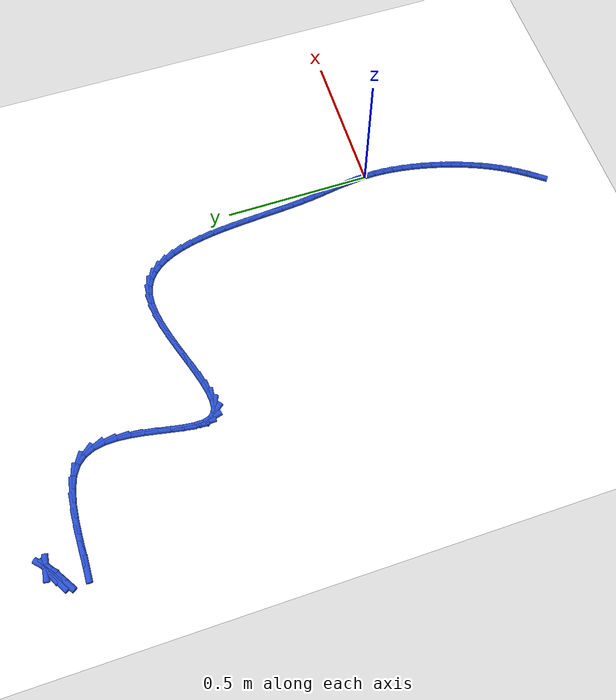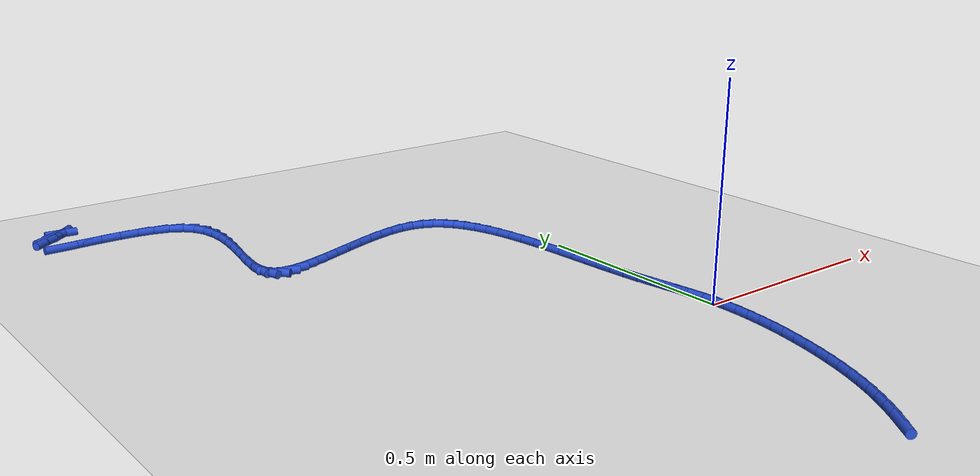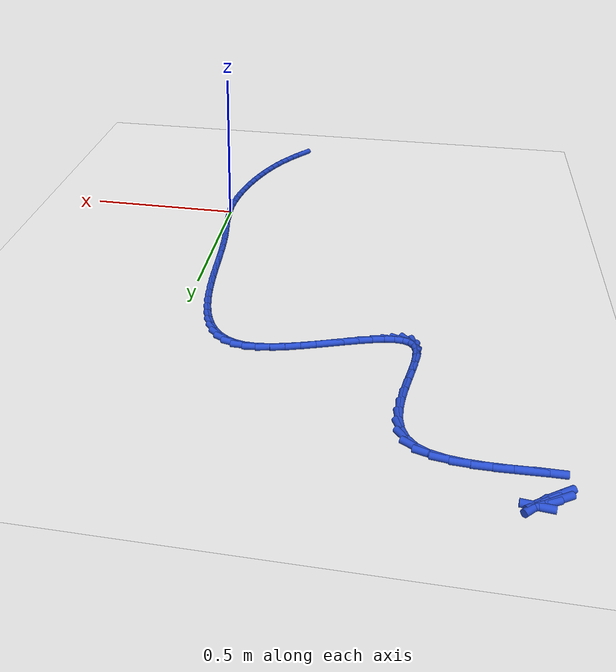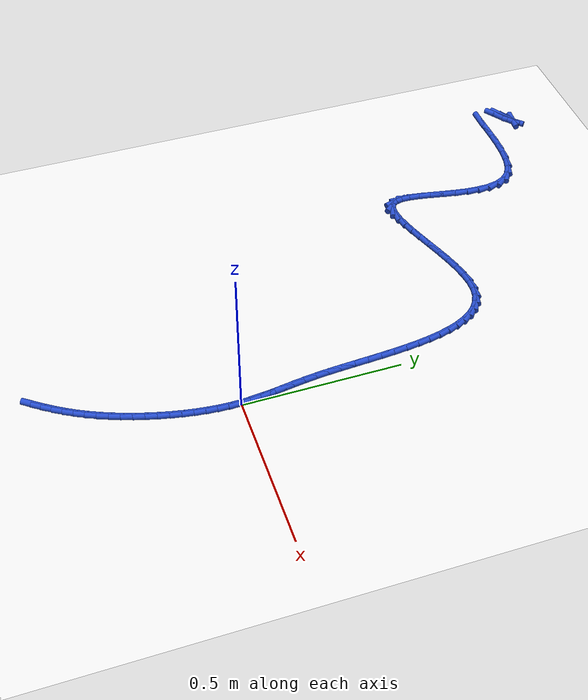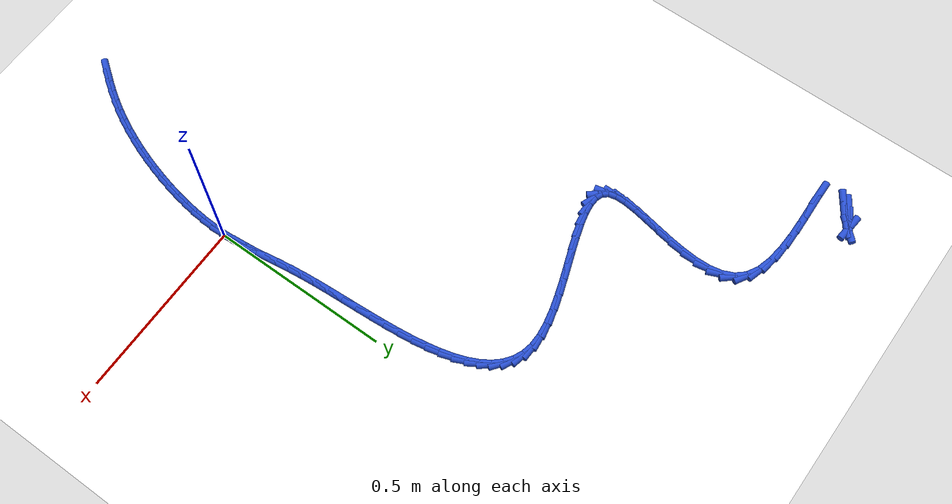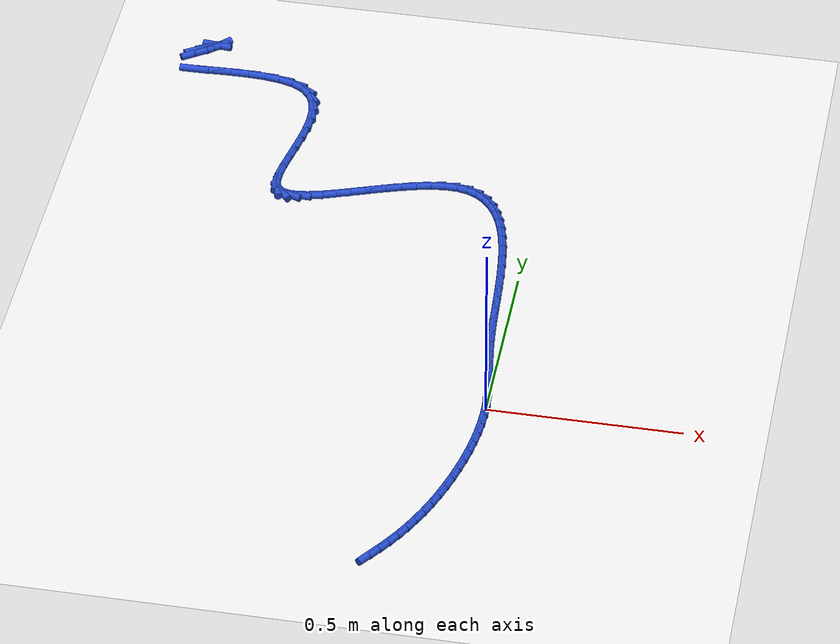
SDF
<sdf version="1.6">
 <world name="default">
  <model name="ground_plane">
   <static>1</static>
   <link name="link">
    <collision name="collision">
     <geometry><plane><normal>0 0 1</normal><size>100 100</size></plane></geometry>
     <surface><friction><ode><mu>100</mu><mu2>50</mu2></ode></friction></surface>
    </collision>
    <visual name="visual">
     <cast_shadows>0</cast_shadows>
     <geometry><plane><normal>0 0 1</normal><size>100 100</size></plane></geometry>
     <material>
      <script><uri>file://media/materials/scripts/gazebo.material</uri><name>Gazebo/WhiteGlow</name></script>
     </material>
    </visual>
   </link>
  </model>
  <model name="line">
   <link name="link_0">
    <pose>1.5612511283791264e-17 -1.3877787807814457e-17 0.01 0 1.57 -1.5118390819186485</pose>
    <collision name="collision">
     <geometry><cylinder><radius>0.01</radius><length>0.08</length></cylinder></geometry>
    </collision>
    <visual name="visual">
     <material>
      <script><name>Gazebo/Blue</name><uri>file://media/materials/scripts/gazebo.material</uri></script>
     </material>
     <geometry><cylinder><radius>0.01</radius><length>0.08</length></cylinder></geometry>
    </visual>
   </link>
   <link name="link_1">
    <pose>-0.0019415017721792643 0.032892509299139325 0.01 0 1.57 -1.4699527122502627</pose>
    <collision name="collision">
     <geometry><cylinder><radius>0.01</radius><length>0.08</length></cylinder></geometry>
    </collision>
    <visual name="visual">
     <material>
      <script><name>Gazebo/Blue</name><uri>file://media/materials/scripts/gazebo.material</uri></script>
     </material>
     <geometry><cylinder><radius>0.01</radius><length>0.08</length></cylinder></geometry>
    </visual>
   </link>
   <link name="link_2">
    <pose>-0.005248764462979722 0.06557721720528396 0.01 0 1.57 -1.4408107136291277</pose>
    <collision name="collision">
     <geometry><cylinder><radius>0.01</radius><length>0.08</length></cylinder></geometry>
    </collision>
    <visual name="visual">
     <material>
      <script><name>Gazebo/Blue</name><uri>file://media/materials/scripts/gazebo.material</uri></script>
     </material>
     <geometry><cylinder><radius>0.01</radius><length>0.08</length></cylinder></geometry>
    </visual>
   </link>
   <link name="link_3">
    <pose>-0.009543673569140288 0.09843233410015827 0.01 0 1.57 -1.425014783909602</pose>
    <collision name="collision">
     <geometry><cylinder><radius>0.01</radius><length>0.08</length></cylinder></geometry>
    </collision>
    <visual name="visual">
     <material>
      <script><name>Gazebo/Blue</name><uri>file://media/materials/scripts/gazebo.material</uri></script>
     </material>
     <geometry><cylinder><radius>0.01</radius><length>0.08</length></cylinder></geometry>
    </visual>
   </link>
   <link name="link_4">
    <pose>-0.014448114587399889 0.13183607036548653 0.01 0 1.57 -1.4222974363183094</pose>
    <collision name="collision">
     <geometry><cylinder><radius>0.01</radius><length>0.08</length></cylinder></geometry>
    </collision>
    <visual name="visual">
     <material>
      <script><name>Gazebo/Blue</name><uri>file://media/materials/scripts/gazebo.material</uri></script>
     </material>
     <geometry><cylinder><radius>0.01</radius><length>0.08</length></cylinder></geometry>
    </visual>
   </link>
   <link name="link_5">
    <pose>-0.019583973014497453 0.16616663638299312 0.01 0 1.57 -1.431695528400672</pose>
    <collision name="collision">
     <geometry><cylinder><radius>0.01</radius><length>0.08</length></cylinder></geometry>
    </collision>
    <visual name="visual">
     <material>
      <script><name>Gazebo/Blue</name><uri>file://media/materials/scripts/gazebo.material</uri></script>
     </material>
     <geometry><cylinder><radius>0.01</radius><length>0.08</length></cylinder></geometry>
    </visual>
   </link>
   <link name="link_6">
    <pose>-0.024573134347171902 0.20180224253440227 0.01 0 1.57 -1.4517349405809672</pose>
    <collision name="collision">
     <geometry><cylinder><radius>0.01</radius><length>0.08</length></cylinder></geometry>
    </collision>
    <visual name="visual">
     <material>
      <script><name>Gazebo/Blue</name><uri>file://media/materials/scripts/gazebo.material</uri></script>
     </material>
     <geometry><cylinder><radius>0.01</radius><length>0.08</length></cylinder></geometry>
    </visual>
   </link>
   <link name="link_7">
    <pose>-0.02903748408216217 0.23912109920143837 0.01 0 1.57 -1.4776081850824199</pose>
    <collision name="collision">
     <geometry><cylinder><radius>0.01</radius><length>0.08</length></cylinder></geometry>
    </collision>
    <visual name="visual">
     <material>
      <script><name>Gazebo/Blue</name><uri>file://media/materials/scripts/gazebo.material</uri></script>
     </material>
     <geometry><cylinder><radius>0.01</radius><length>0.08</length></cylinder></geometry>
    </visual>
   </link>
   <link name="link_8">
    <pose>-0.032705312508177965 0.27836649062140445 0.01 0 1.57 -1.4967464867715143</pose>
    <collision name="collision">
     <geometry><cylinder><radius>0.01</radius><length>0.08</length></cylinder></geometry>
    </collision>
    <visual name="visual">
     <material>
      <script><name>Gazebo/Blue</name><uri>file://media/materials/scripts/gazebo.material</uri></script>
     </material>
     <geometry><cylinder><radius>0.01</radius><length>0.08</length></cylinder></geometry>
    </visual>
   </link>
   <link name="link_9">
    <pose>-0.03573706674442917 0.3192337063986119 0.01 0 1.57 -1.5074773160996524</pose>
    <collision name="collision">
     <geometry><cylinder><radius>0.01</radius><length>0.08</length></cylinder></geometry>
    </collision>
    <visual name="visual">
     <material>
      <script><name>Gazebo/Blue</name><uri>file://media/materials/scripts/gazebo.material</uri></script>
     </material>
     <geometry><cylinder><radius>0.01</radius><length>0.08</length></cylinder></geometry>
    </visual>
   </link>
   <link name="link_10">
    <pose>-0.03840289256038804 0.361278933229937 0.01 0 1.57 -1.5107918281252322</pose>
    <collision name="collision">
     <geometry><cylinder><radius>0.01</radius><length>0.08</length></cylinder></geometry>
    </collision>
    <visual name="visual">
     <material>
      <script><name>Gazebo/Blue</name><uri>file://media/materials/scripts/gazebo.material</uri></script>
     </material>
     <geometry><cylinder><radius>0.01</radius><length>0.08</length></cylinder></geometry>
    </visual>
   </link>
   <link name="link_11">
    <pose>-0.04097293573970034 0.4040583577942836 0.01 0 1.57 -1.5071624007485722</pose>
    <collision name="collision">
     <geometry><cylinder><radius>0.01</radius><length>0.08</length></cylinder></geometry>
    </collision>
    <visual name="visual">
     <material>
      <script><name>Gazebo/Blue</name><uri>file://media/materials/scripts/gazebo.material</uri></script>
     </material>
     <geometry><cylinder><radius>0.01</radius><length>0.08</length></cylinder></geometry>
    </visual>
   </link>
   <link name="link_12">
    <pose>-0.04371734206601181 0.44712816677055567 0.01 0 1.57 -1.4966273112997701</pose>
    <collision name="collision">
     <geometry><cylinder><radius>0.01</radius><length>0.08</length></cylinder></geometry>
    </collision>
    <visual name="visual">
     <material>
      <script><name>Gazebo/Blue</name><uri>file://media/materials/scripts/gazebo.material</uri></script>
     </material>
     <geometry><cylinder><radius>0.01</radius><length>0.08</length></cylinder></geometry>
    </visual>
   </link>
   <link name="link_13">
    <pose>-0.046906257322968194 0.4900445468376572 0.01 0 1.57 -1.4788153640142214</pose>
    <collision name="collision">
     <geometry><cylinder><radius>0.01</radius><length>0.08</length></cylinder></geometry>
    </collision>
    <visual name="visual">
     <material>
      <script><name>Gazebo/Blue</name><uri>file://media/materials/scripts/gazebo.material</uri></script>
     </material>
     <geometry><cylinder><radius>0.01</radius><length>0.08</length></cylinder></geometry>
    </visual>
   </link>
   <link name="link_14">
    <pose>-0.050809827294215244 0.532363684674492 0.01 0 1.57 -1.4529200065143062</pose>
    <collision name="collision">
     <geometry><cylinder><radius>0.01</radius><length>0.08</length></cylinder></geometry>
    </collision>
    <visual name="visual">
     <material>
      <script><name>Gazebo/Blue</name><uri>file://media/materials/scripts/gazebo.material</uri></script>
     </material>
     <geometry><cylinder><radius>0.01</radius><length>0.08</length></cylinder></geometry>
    </visual>
   </link>
   <link name="link_15">
    <pose>-0.055698197763398696 0.5736417669599638 0.01 0 1.57 -1.4176245442067188</pose>
    <collision name="collision">
     <geometry><cylinder><radius>0.01</radius><length>0.08</length></cylinder></geometry>
    </collision>
    <visual name="visual">
     <material>
      <script><name>Gazebo/Blue</name><uri>file://media/materials/scripts/gazebo.material</uri></script>
     </material>
     <geometry><cylinder><radius>0.01</radius><length>0.08</length></cylinder></geometry>
    </visual>
   </link>
   <link name="link_16">
    <pose>-0.061841514514164295 0.6134349803729767 0.01 0 1.57 -1.3709767385991372</pose>
    <collision name="collision">
     <geometry><cylinder><radius>0.01</radius><length>0.08</length></cylinder></geometry>
    </collision>
    <visual name="visual">
     <material>
      <script><name>Gazebo/Blue</name><uri>file://media/materials/scripts/gazebo.material</uri></script>
     </material>
     <geometry><cylinder><radius>0.01</radius><length>0.08</length></cylinder></geometry>
    </visual>
   </link>
   <link name="link_17">
    <pose>-0.06950992333015779 0.6512995115924345 0.01 0 1.57 -1.310217509264038</pose>
    <collision name="collision">
     <geometry><cylinder><radius>0.01</radius><length>0.08</length></cylinder></geometry>
    </collision>
    <visual name="visual">
     <material>
      <script><name>Gazebo/Blue</name><uri>file://media/materials/scripts/gazebo.material</uri></script>
     </material>
     <geometry><cylinder><radius>0.01</radius><length>0.08</length></cylinder></geometry>
    </visual>
   </link>
   <link name="link_18">
    <pose>-0.07897356999502493 0.6867915472972412 0.01 0 1.57 -1.231601118944008</pose>
    <collision name="collision">
     <geometry><cylinder><radius>0.01</radius><length>0.08</length></cylinder></geometry>
    </collision>
    <visual name="visual">
     <material>
      <script><name>Gazebo/Blue</name><uri>file://media/materials/scripts/gazebo.material</uri></script>
     </material>
     <geometry><cylinder><radius>0.01</radius><length>0.08</length></cylinder></geometry>
    </visual>
   </link>
   <link name="link_19">
    <pose>-0.09050260029241144 0.7194672741663006 0.01 0 1.57 -1.1303437791452464</pose>
    <collision name="collision">
     <geometry><cylinder><radius>0.01</radius><length>0.08</length></cylinder></geometry>
    </collision>
    <visual name="visual">
     <material>
      <script><name>Gazebo/Blue</name><uri>file://media/materials/scripts/gazebo.material</uri></script>
     </material>
     <geometry><cylinder><radius>0.01</radius><length>0.08</length></cylinder></geometry>
    </visual>
   </link>
   <link name="link_20">
    <pose>-0.1043671600059631 0.7488828788785167 0.01 0 1.57 -1.0010758105745496</pose>
    <collision name="collision">
     <geometry><cylinder><radius>0.01</radius><length>0.08</length></cylinder></geometry>
    </collision>
    <visual name="visual">
     <material>
      <script><name>Gazebo/Blue</name><uri>file://media/materials/scripts/gazebo.material</uri></script>
     </material>
     <geometry><cylinder><radius>0.01</radius><length>0.08</length></cylinder></geometry>
    </visual>
   </link>
   <link name="link_21">
    <pose>-0.12083739491932563 0.7745945481127933 0.01 0 1.57 -0.8395584375596473</pose>
    <collision name="collision">
     <geometry><cylinder><radius>0.01</radius><length>0.08</length></cylinder></geometry>
    </collision>
    <visual name="visual">
     <material>
      <script><name>Gazebo/Blue</name><uri>file://media/materials/scripts/gazebo.material</uri></script>
     </material>
     <geometry><cylinder><radius>0.01</radius><length>0.08</length></cylinder></geometry>
    </visual>
   </link>
   <link name="link_22">
    <pose>-0.14018345081614478 0.7961584685480343 0.01 0 1.57 -0.646435158526174</pose>
    <collision name="collision">
     <geometry><cylinder><radius>0.01</radius><length>0.08</length></cylinder></geometry>
    </collision>
    <visual name="visual">
     <material>
      <script><name>Gazebo/Blue</name><uri>file://media/materials/scripts/gazebo.material</uri></script>
     </material>
     <geometry><cylinder><radius>0.01</radius><length>0.08</length></cylinder></geometry>
    </visual>
   </link>
   <link name="link_23">
    <pose>-0.16267547348006628 0.8131308268631435 0.01 0 1.57 -0.43175151763653646</pose>
    <collision name="collision">
     <geometry><cylinder><radius>0.01</radius><length>0.08</length></cylinder></geometry>
    </collision>
    <visual name="visual">
     <material>
      <script><name>Gazebo/Blue</name><uri>file://media/materials/scripts/gazebo.material</uri></script>
     </material>
     <geometry><cylinder><radius>0.01</radius><length>0.08</length></cylinder></geometry>
    </visual>
   </link>
   <link name="link_24">
    <pose>-0.18858360869473587 0.8250678097370249 0.01 0 1.57 -0.21484234970169563</pose>
    <collision name="collision">
     <geometry><cylinder><radius>0.01</radius><length>0.08</length></cylinder></geometry>
    </collision>
    <visual name="visual">
     <material>
      <script><name>Gazebo/Blue</name><uri>file://media/materials/scripts/gazebo.material</uri></script>
     </material>
     <geometry><cylinder><radius>0.01</radius><length>0.08</length></cylinder></geometry>
    </visual>
   </link>
   <link name="link_25">
    <pose>-0.2181780022437993 0.8315256038485823 0.01 0 1.57 -0.021126260409827718</pose>
    <collision name="collision">
     <geometry><cylinder><radius>0.01</radius><length>0.08</length></cylinder></geometry>
    </collision>
    <visual name="visual">
     <material>
      <script><name>Gazebo/Blue</name><uri>file://media/materials/scripts/gazebo.material</uri></script>
     </material>
     <geometry><cylinder><radius>0.01</radius><length>0.08</length></cylinder></geometry>
    </visual>
   </link>
   <link name="link_26">
    <pose>-0.25160198475441264 0.8322318326779146 0.01 0 1.57 0.11825566839608</pose>
    <collision name="collision">
     <geometry><cylinder><radius>0.01</radius><length>0.08</length></cylinder></geometry>
    </collision>
    <visual name="visual">
     <material>
      <script><name>Gazebo/Blue</name><uri>file://media/materials/scripts/gazebo.material</uri></script>
     </material>
     <geometry><cylinder><radius>0.01</radius><length>0.08</length></cylinder></geometry>
    </visual>
   </link>
   <link name="link_27">
    <pose>-0.2882896018206109 0.8278729763637357 0.01 0 1.57 0.2115178158600336</pose>
    <collision name="collision">
     <geometry><cylinder><radius>0.01</radius><length>0.08</length></cylinder></geometry>
    </collision>
    <visual name="visual">
     <material>
      <script><name>Gazebo/Blue</name><uri>file://media/materials/scripts/gazebo.material</uri></script>
     </material>
     <geometry><cylinder><radius>0.01</radius><length>0.08</length></cylinder></geometry>
    </visual>
   </link>
   <link name="link_28">
    <pose>-0.32742843103578745 0.8194687061774 0.01 0 1.57 0.27328191515543776</pose>
    <collision name="collision">
     <geometry><cylinder><radius>0.01</radius><length>0.08</length></cylinder></geometry>
    </collision>
    <visual name="visual">
     <material>
      <script><name>Gazebo/Blue</name><uri>file://media/materials/scripts/gazebo.material</uri></script>
     </material>
     <geometry><cylinder><radius>0.01</radius><length>0.08</length></cylinder></geometry>
    </visual>
   </link>
   <link name="link_29">
    <pose>-0.368205803464725 0.8080390266633322 0.01 0 1.57 0.3123617350956508</pose>
    <collision name="collision">
     <geometry><cylinder><radius>0.01</radius><length>0.08</length></cylinder></geometry>
    </collision>
    <visual name="visual">
     <material>
      <script><name>Gazebo/Blue</name><uri>file://media/materials/scripts/gazebo.material</uri></script>
     </material>
     <geometry><cylinder><radius>0.01</radius><length>0.08</length></cylinder></geometry>
    </visual>
   </link>
   <link name="link_30">
    <pose>-0.4098090501722063 0.794603942365956 0.01 0 1.57 0.3335616188444252</pose>
    <collision name="collision">
     <geometry><cylinder><radius>0.01</radius><length>0.08</length></cylinder></geometry>
    </collision>
    <visual name="visual">
     <material>
      <script><name>Gazebo/Blue</name><uri>file://media/materials/scripts/gazebo.material</uri></script>
     </material>
     <geometry><cylinder><radius>0.01</radius><length>0.08</length></cylinder></geometry>
    </visual>
   </link>
   <link name="link_31">
    <pose>-0.45142550222301414 0.780183457829696 0.01 0 1.57 0.33885431014899253</pose>
    <collision name="collision">
     <geometry><cylinder><radius>0.01</radius><length>0.08</length></cylinder></geometry>
    </collision>
    <visual name="visual">
     <material>
      <script><name>Gazebo/Blue</name><uri>file://media/materials/scripts/gazebo.material</uri></script>
     </material>
     <geometry><cylinder><radius>0.01</radius><length>0.08</length></cylinder></geometry>
    </visual>
   </link>
   <link name="link_32">
    <pose>-0.49224249068193077 0.7657975775989757 0.01 0 1.57 0.32777555426560195</pose>
    <collision name="collision">
     <geometry><cylinder><radius>0.01</radius><length>0.08</length></cylinder></geometry>
    </collision>
    <visual name="visual">
     <material>
      <script><name>Gazebo/Blue</name><uri>file://media/materials/scripts/gazebo.material</uri></script>
     </material>
     <geometry><cylinder><radius>0.01</radius><length>0.08</length></cylinder></geometry>
    </visual>
   </link>
   <link name="link_33">
    <pose>-0.5314473466137393 0.75246630621822 0.01 0 1.57 0.29700101034942195</pose>
    <collision name="collision">
     <geometry><cylinder><radius>0.01</radius><length>0.08</length></cylinder></geometry>
    </collision>
    <visual name="visual">
     <material>
      <script><name>Gazebo/Blue</name><uri>file://media/materials/scripts/gazebo.material</uri></script>
     </material>
     <geometry><cylinder><radius>0.01</radius><length>0.08</length></cylinder></geometry>
    </visual>
   </link>
   <link name="link_34">
    <pose>-0.5682274010832223 0.7412096482318526 0.01 0 1.57 0.23869469505411492</pose>
    <collision name="collision">
     <geometry><cylinder><radius>0.01</radius><length>0.08</length></cylinder></geometry>
    </collision>
    <visual name="visual">
     <material>
      <script><name>Gazebo/Blue</name><uri>file://media/materials/scripts/gazebo.material</uri></script>
     </material>
     <geometry><cylinder><radius>0.01</radius><length>0.08</length></cylinder></geometry>
    </visual>
   </link>
   <link name="link_35">
    <pose>-0.6017699851551626 0.7330476081842976 0.01 0 1.57 0.1363837995734624</pose>
    <collision name="collision">
     <geometry><cylinder><radius>0.01</radius><length>0.08</length></cylinder></geometry>
    </collision>
    <visual name="visual">
     <material>
      <script><name>Gazebo/Blue</name><uri>file://media/materials/scripts/gazebo.material</uri></script>
     </material>
     <geometry><cylinder><radius>0.01</radius><length>0.08</length></cylinder></geometry>
    </visual>
   </link>
   <link name="link_36">
    <pose>-0.6312624298943424 0.7290001906199794 0.01 0 1.57 -0.04411368922124703</pose>
    <collision name="collision">
     <geometry><cylinder><radius>0.01</radius><length>0.08</length></cylinder></geometry>
    </collision>
    <visual name="visual">
     <material>
      <script><name>Gazebo/Blue</name><uri>file://media/materials/scripts/gazebo.material</uri></script>
     </material>
     <geometry><cylinder><radius>0.01</radius><length>0.08</length></cylinder></geometry>
    </visual>
   </link>
   <link name="link_37">
    <pose>-0.6558920663655448 0.7300874000833221 0.01 0 1.57 -0.36495574321376256</pose>
    <collision name="collision">
     <geometry><cylinder><radius>0.01</radius><length>0.08</length></cylinder></geometry>
    </collision>
    <visual name="visual">
     <material>
      <script><name>Gazebo/Blue</name><uri>file://media/materials/scripts/gazebo.material</uri></script>
     </material>
     <geometry><cylinder><radius>0.01</radius><length>0.08</length></cylinder></geometry>
    </visual>
   </link>
   <link name="link_38">
    <pose>-0.6748462256335522 0.7373292411187496 0.01 0 1.57 -0.8576139744715884</pose>
    <collision name="collision">
     <geometry><cylinder><radius>0.01</radius><length>0.08</length></cylinder></geometry>
    </collision>
    <visual name="visual">
     <material>
      <script><name>Gazebo/Blue</name><uri>file://media/materials/scripts/gazebo.material</uri></script>
     </material>
     <geometry><cylinder><radius>0.01</radius><length>0.08</length></cylinder></geometry>
    </visual>
   </link>
   <link name="link_39">
    <pose>-0.6873150746168148 0.7517428073425478 0.01 0 1.57 -1.3129137072464439</pose>
    <collision name="collision">
     <geometry><cylinder><radius>0.01</radius><length>0.08</length></cylinder></geometry>
    </collision>
    <visual name="visual">
     <material>
      <script><name>Gazebo/Blue</name><uri>file://media/materials/scripts/gazebo.material</uri></script>
     </material>
     <geometry><cylinder><radius>0.01</radius><length>0.08</length></cylinder></geometry>
    </visual>
   </link>
   <link name="link_40">
    <pose>-0.6931087347726045 0.7737088255752533 0.01 0 1.57 -1.5595175447682645</pose>
    <collision name="collision">
     <geometry><cylinder><radius>0.01</radius><length>0.08</length></cylinder></geometry>
    </collision>
    <visual name="visual">
     <material>
      <script><name>Gazebo/Blue</name><uri>file://media/materials/scripts/gazebo.material</uri></script>
     </material>
     <geometry><cylinder><radius>0.01</radius><length>0.08</length></cylinder></geometry>
    </visual>
   </link>
   <link name="link_41">
    <pose>-0.6934298531334976 0.8021786322823617 0.01 0 1.57 1.4598133642609663</pose>
    <collision name="collision">
     <geometry><cylinder><radius>0.01</radius><length>0.08</length></cylinder></geometry>
    </collision>
    <visual name="visual">
     <material>
      <script><name>Gazebo/Blue</name><uri>file://media/materials/scripts/gazebo.material</uri></script>
     </material>
     <geometry><cylinder><radius>0.01</radius><length>0.08</length></cylinder></geometry>
    </visual>
   </link>
   <link name="link_42">
    <pose>-0.6896709483146134 0.8359086658150382 0.01 0 1.57 1.4016474509683845</pose>
    <collision name="collision">
     <geometry><cylinder><radius>0.01</radius><length>0.08</length></cylinder></geometry>
    </collision>
    <visual name="visual">
     <material>
      <script><name>Gazebo/Blue</name><uri>file://media/materials/scripts/gazebo.material</uri></script>
     </material>
     <geometry><cylinder><radius>0.01</radius><length>0.08</length></cylinder></geometry>
    </visual>
   </link>
   <link name="link_43">
    <pose>-0.6832245389310723 0.8736553645244467 0.01 0 1.57 1.382019085787752</pose>
    <collision name="collision">
     <geometry><cylinder><radius>0.01</radius><length>0.08</length></cylinder></geometry>
    </collision>
    <visual name="visual">
     <material>
      <script><name>Gazebo/Blue</name><uri>file://media/materials/scripts/gazebo.material</uri></script>
     </material>
     <geometry><cylinder><radius>0.01</radius><length>0.08</length></cylinder></geometry>
    </visual>
   </link>
   <link name="link_44">
    <pose>-0.6754831435979937 0.914175166761752 0.01 0 1.57 1.3909767279148109</pose>
    <collision name="collision">
     <geometry><cylinder><radius>0.01</radius><length>0.08</length></cylinder></geometry>
    </collision>
    <visual name="visual">
     <material>
      <script><name>Gazebo/Blue</name><uri>file://media/materials/scripts/gazebo.material</uri></script>
     </material>
     <geometry><cylinder><radius>0.01</radius><length>0.08</length></cylinder></geometry>
    </visual>
   </link>
   <link name="link_45">
    <pose>-0.6678392809304983 0.9562245108781192 0.01 0 1.57 1.4264485243379388</pose>
    <collision name="collision">
     <geometry><cylinder><radius>0.01</radius><length>0.08</length></cylinder></geometry>
    </collision>
    <visual name="visual">
     <material>
      <script><name>Gazebo/Blue</name><uri>file://media/materials/scripts/gazebo.material</uri></script>
     </material>
     <geometry><cylinder><radius>0.01</radius><length>0.08</length></cylinder></geometry>
    </visual>
   </link>
   <link name="link_46">
    <pose>-0.6616854695437054 0.9985598352247133 0.01 0 1.57 1.4919024230707973</pose>
    <collision name="collision">
     <geometry><cylinder><radius>0.01</radius><length>0.08</length></cylinder></geometry>
    </collision>
    <visual name="visual">
     <material>
      <script><name>Gazebo/Blue</name><uri>file://media/materials/scripts/gazebo.material</uri></script>
     </material>
     <geometry><cylinder><radius>0.01</radius><length>0.08</length></cylinder></geometry>
    </visual>
   </link>
   <link name="link_47">
    <pose>-0.6584142280527352 1.0399375781526985 0.01 0 1.57 -1.545178294317305</pose>
    <collision name="collision">
     <geometry><cylinder><radius>0.01</radius><length>0.08</length></cylinder></geometry>
    </collision>
    <visual name="visual">
     <material>
      <script><name>Gazebo/Blue</name><uri>file://media/materials/scripts/gazebo.material</uri></script>
     </material>
     <geometry><cylinder><radius>0.01</radius><length>0.08</length></cylinder></geometry>
    </visual>
   </link>
   <link name="link_48">
    <pose>-0.6594180750727076 1.0791141780132392 0.01 0 1.57 -1.386212953670389</pose>
    <collision name="collision">
     <geometry><cylinder><radius>0.01</radius><length>0.08</length></cylinder></geometry>
    </collision>
    <visual name="visual">
     <material>
      <script><name>Gazebo/Blue</name><uri>file://media/materials/scripts/gazebo.material</uri></script>
     </material>
     <geometry><cylinder><radius>0.01</radius><length>0.08</length></cylinder></geometry>
    </visual>
   </link>
   <link name="link_49">
    <pose>-0.6660895292187425 1.114846073157501 0.01 0 1.57 -1.1543376628106674</pose>
    <collision name="collision">
     <geometry><cylinder><radius>0.01</radius><length>0.08</length></cylinder></geometry>
    </collision>
    <visual name="visual">
     <material>
      <script><name>Gazebo/Blue</name><uri>file://media/materials/scripts/gazebo.material</uri></script>
     </material>
     <geometry><cylinder><radius>0.01</radius><length>0.08</length></cylinder></geometry>
    </visual>
   </link>
   <link name="link_50">
    <pose>-0.6798211091059598 1.1458897019366479 0.01 0 1.57 -0.8472182868405171</pose>
    <collision name="collision">
     <geometry><cylinder><radius>0.01</radius><length>0.08</length></cylinder></geometry>
    </collision>
    <visual name="visual">
     <material>
      <script><name>Gazebo/Blue</name><uri>file://media/materials/scripts/gazebo.material</uri></script>
     </material>
     <geometry><cylinder><radius>0.01</radius><length>0.08</length></cylinder></geometry>
    </visual>
   </link>
   <link name="link_51">
    <pose>-0.7020053333494796 1.171001502701845 0.01 0 1.57 -0.5179572351718453</pose>
    <collision name="collision">
     <geometry><cylinder><radius>0.01</radius><length>0.08</length></cylinder></geometry>
    </collision>
    <visual name="visual">
     <material>
      <script><name>Gazebo/Blue</name><uri>file://media/materials/scripts/gazebo.material</uri></script>
     </material>
     <geometry><cylinder><radius>0.01</radius><length>0.08</length></cylinder></geometry>
    </visual>
   </link>
   <link name="link_52">
    <pose>-0.7337765556577021 1.1891064149693769 0.01 0 1.57 -0.2807587287827074</pose>
    <collision name="collision">
     <geometry><cylinder><radius>0.01</radius><length>0.08</length></cylinder></geometry>
    </collision>
    <visual name="visual">
     <material>
      <script><name>Gazebo/Blue</name><uri>file://media/materials/scripts/gazebo.material</uri></script>
     </material>
     <geometry><cylinder><radius>0.01</radius><length>0.08</length></cylinder></geometry>
    </visual>
   </link>
   <link name="link_53">
    <pose>-0.7738985429935397 1.2006766320388107 0.01 0 1.57 -0.13707496246987613</pose>
    <collision name="collision">
     <geometry><cylinder><radius>0.01</radius><length>0.08</length></cylinder></geometry>
    </collision>
    <visual name="visual">
     <material>
      <script><name>Gazebo/Blue</name><uri>file://media/materials/scripts/gazebo.material</uri></script>
     </material>
     <geometry><cylinder><radius>0.01</radius><length>0.08</length></cylinder></geometry>
    </visual>
   </link>
   <link name="link_54">
    <pose>-0.8198600129949541 1.2070165567441948 0.01 0 1.57 -0.04911176284785143</pose>
    <collision name="collision">
     <geometry><cylinder><radius>0.01</radius><length>0.08</length></cylinder></geometry>
    </collision>
    <visual name="visual">
     <material>
      <script><name>Gazebo/Blue</name><uri>file://media/materials/scripts/gazebo.material</uri></script>
     </material>
     <geometry><cylinder><radius>0.01</radius><length>0.08</length></cylinder></geometry>
    </visual>
   </link>
   <link name="link_55">
    <pose>-0.8691374076711852 1.2094386040764866 0.01 0 1.57 0.0036631736291556022</pose>
    <collision name="collision">
     <geometry><cylinder><radius>0.01</radius><length>0.08</length></cylinder></geometry>
    </collision>
    <visual name="visual">
     <material>
      <script><name>Gazebo/Blue</name><uri>file://media/materials/scripts/gazebo.material</uri></script>
     </material>
     <geometry><cylinder><radius>0.01</radius><length>0.08</length></cylinder></geometry>
    </visual>
   </link>
   <link name="link_56">
    <pose>-0.9192071690314727 1.209255189026647 0.01 0 1.57 0.030534696045813107</pose>
    <collision name="collision">
     <geometry><cylinder><radius>0.01</radius><length>0.08</length></cylinder></geometry>
    </collision>
    <visual name="visual">
     <material>
      <script><name>Gazebo/Blue</name><uri>file://media/materials/scripts/gazebo.material</uri></script>
     </material>
     <geometry><cylinder><radius>0.01</radius><length>0.08</length></cylinder></geometry>
    </visual>
   </link>
   <link name="link_57">
    <pose>-0.9675457390850576 1.207778726585635 0.01 0 1.57 0.0330407969096871</pose>
    <collision name="collision">
     <geometry><cylinder><radius>0.01</radius><length>0.08</length></cylinder></geometry>
    </collision>
    <visual name="visual">
     <material>
      <script><name>Gazebo/Blue</name><uri>file://media/materials/scripts/gazebo.material</uri></script>
     </material>
     <geometry><cylinder><radius>0.01</radius><length>0.08</length></cylinder></geometry>
    </visual>
   </link>
   <link name="link_58">
    <pose>-1.0116295598411802 1.2063216317444097 0.01 0 1.57 0.0033590686071673743</pose>
    <collision name="collision">
     <geometry><cylinder><radius>0.01</radius><length>0.08</length></cylinder></geometry>
    </collision>
    <visual name="visual">
     <material>
      <script><name>Gazebo/Blue</name><uri>file://media/materials/scripts/gazebo.material</uri></script>
     </material>
     <geometry><cylinder><radius>0.01</radius><length>0.08</length></cylinder></geometry>
    </visual>
   </link>
   <link name="link_65">
    <pose>-1.0192308254464173 1.2907039595234253 0.01 0 1.57 0.5566867503905906</pose>
    <collision name="collision">
     <geometry><cylinder><radius>0.01</radius><length>0.08</length></cylinder></geometry>
    </collision>
    <visual name="visual">
     <material>
      <script><name>Gazebo/Blue</name><uri>file://media/materials/scripts/gazebo.material</uri></script>
     </material>
     <geometry><cylinder><radius>0.01</radius><length>0.08</length></cylinder></geometry>
    </visual>
   </link>
   <link name="link_66">
    <pose>-0.9898106259172549 1.3090134298093439 0.01 0 1.57 0.486553388710373</pose>
    <collision name="collision">
     <geometry><cylinder><radius>0.01</radius><length>0.08</length></cylinder></geometry>
    </collision>
    <visual name="visual">
     <material>
      <script><name>Gazebo/Blue</name><uri>file://media/materials/scripts/gazebo.material</uri></script>
     </material>
     <geometry><cylinder><radius>0.01</radius><length>0.08</length></cylinder></geometry>
    </visual>
   </link>
   <link name="link_67">
    <pose>-0.9719863083919206 1.3184419424890468 0.01 0 1.57 -0.10547685825392154</pose>
    <collision name="collision">
     <geometry><cylinder><radius>0.01</radius><length>0.08</length></cylinder></geometry>
    </collision>
    <visual name="visual">
     <material>
      <script><name>Gazebo/Blue</name><uri>file://media/materials/scripts/gazebo.material</uri></script>
     </material>
     <geometry><cylinder><radius>0.01</radius><length>0.08</length></cylinder></geometry>
    </visual>
   </link>
   <link name="link_68">
    <pose>-0.9681936813811505 1.3180404179658682 0.01 0 1.57 0.790025412645668</pose>
    <collision name="collision">
     <geometry><cylinder><radius>0.01</radius><length>0.08</length></cylinder></geometry>
    </collision>
    <visual name="visual">
     <material>
      <script><name>Gazebo/Blue</name><uri>file://media/materials/scripts/gazebo.material</uri></script>
     </material>
     <geometry><cylinder><radius>0.01</radius><length>0.08</length></cylinder></geometry>
    </visual>
   </link>
   <link name="link_69">
    <pose>-0.976881798797662 1.3092715220208746 0.01 0 1.57 0.6746087191078368</pose>
    <collision name="collision">
     <geometry><cylinder><radius>0.01</radius><length>0.08</length></cylinder></geometry>
    </collision>
    <visual name="visual">
     <material>
      <script><name>Gazebo/Blue</name><uri>file://media/materials/scripts/gazebo.material</uri></script>
     </material>
     <geometry><cylinder><radius>0.01</radius><length>0.08</length></cylinder></geometry>
    </visual>
   </link>
   <link name="link_70">
    <pose>-0.9964151472446874 1.2936490785419925 0.01 0 1.57 0.6301175254867416</pose>
    <collision name="collision">
     <geometry><cylinder><radius>0.01</radius><length>0.08</length></cylinder></geometry>
    </collision>
    <visual name="visual">
     <material>
      <script><name>Gazebo/Blue</name><uri>file://media/materials/scripts/gazebo.material</uri></script>
     </material>
     <geometry><cylinder><radius>0.01</radius><length>0.08</length></cylinder></geometry>
    </visual>
   </link>
   <link name="link_71">
    <pose>-1.025158213325459 1.2726869114171502 0.01 0 1.57 0.5989129284464957</pose>
    <collision name="collision">
     <geometry><cylinder><radius>0.01</radius><length>0.08</length></cylinder></geometry>
    </collision>
    <visual name="visual">
     <material>
      <script><name>Gazebo/Blue</name><uri>file://media/materials/scripts/gazebo.material</uri></script>
     </material>
     <geometry><cylinder><radius>0.01</radius><length>0.08</length></cylinder></geometry>
    </visual>
   </link>
   <link name="link_242">
    <pose>-0.18482834437747564 -0.573162530525387 0.01 0 1.57 0.9411714623600792</pose>
    <collision name="collision">
     <geometry><cylinder><radius>0.01</radius><length>0.08</length></cylinder></geometry>
    </collision>
    <visual name="visual">
     <material>
      <script><name>Gazebo/Blue</name><uri>file://media/materials/scripts/gazebo.material</uri></script>
     </material>
     <geometry><cylinder><radius>0.01</radius><length>0.08</length></cylinder></geometry>
    </visual>
   </link>
   <link name="link_243">
    <pose>-0.16594305470682896 -0.5472404380790222 0.01 0 1.57 0.9749757219251126</pose>
    <collision name="collision">
     <geometry><cylinder><radius>0.01</radius><length>0.08</length></cylinder></geometry>
    </collision>
    <visual name="visual">
     <material>
      <script><name>Gazebo/Blue</name><uri>file://media/materials/scripts/gazebo.material</uri></script>
     </material>
     <geometry><cylinder><radius>0.01</radius><length>0.08</length></cylinder></geometry>
    </visual>
   </link>
   <link name="link_244">
    <pose>-0.14785984736764995 -0.520569777748508 0.01 0 1.57 1.0125549510393235</pose>
    <collision name="collision">
     <geometry><cylinder><radius>0.01</radius><length>0.08</length></cylinder></geometry>
    </collision>
    <visual name="visual">
     <material>
      <script><name>Gazebo/Blue</name><uri>file://media/materials/scripts/gazebo.material</uri></script>
     </material>
     <geometry><cylinder><radius>0.01</radius><length>0.08</length></cylinder></geometry>
    </visual>
   </link>
   <link name="link_245">
    <pose>-0.1306497174093618 -0.4930116269824738 0.01 0 1.57 1.0534448210819267</pose>
    <collision name="collision">
     <geometry><cylinder><radius>0.01</radius><length>0.08</length></cylinder></geometry>
    </collision>
    <visual name="visual">
     <material>
      <script><name>Gazebo/Blue</name><uri>file://media/materials/scripts/gazebo.material</uri></script>
     </material>
     <geometry><cylinder><radius>0.01</radius><length>0.08</length></cylinder></geometry>
    </visual>
   </link>
   <link name="link_246">
    <pose>-0.11438365986949481 -0.4644270632759042 0.01 0 1.57 1.0961546616129496</pose>
    <collision name="collision">
     <geometry><cylinder><radius>0.01</radius><length>0.08</length></cylinder></geometry>
    </collision>
    <visual name="visual">
     <material>
      <script><name>Gazebo/Blue</name><uri>file://media/materials/scripts/gazebo.material</uri></script>
     </material>
     <geometry><cylinder><radius>0.01</radius><length>0.08</length></cylinder></geometry>
    </visual>
   </link>
   <link name="link_247">
    <pose>-0.09912098718780585 -0.4347226927082962 0.01 0 1.57 1.136856120712402</pose>
    <collision name="collision">
     <geometry><cylinder><radius>0.01</radius><length>0.08</length></cylinder></geometry>
    </collision>
    <visual name="visual">
     <material>
      <script><name>Gazebo/Blue</name><uri>file://media/materials/scripts/gazebo.material</uri></script>
     </material>
     <geometry><cylinder><radius>0.01</radius><length>0.08</length></cylinder></geometry>
    </visual>
   </link>
   <link name="link_248">
    <pose>-0.08487568439855764 -0.4039817680820929 0.01 0 1.57 1.1750133243865277</pose>
    <collision name="collision">
     <geometry><cylinder><radius>0.01</radius><length>0.08</length></cylinder></geometry>
    </collision>
    <visual name="visual">
     <material>
      <script><name>Gazebo/Blue</name><uri>file://media/materials/scripts/gazebo.material</uri></script>
     </material>
     <geometry><cylinder><radius>0.01</radius><length>0.08</length></cylinder></geometry>
    </visual>
   </link>
   <link name="link_249">
    <pose>-0.07165074496256592 -0.3723303777736738 0.01 0 1.57 1.210994358244288</pose>
    <collision name="collision">
     <geometry><cylinder><radius>0.01</radius><length>0.08</length></cylinder></geometry>
    </collision>
    <visual name="visual">
     <material>
      <script><name>Gazebo/Blue</name><uri>file://media/materials/scripts/gazebo.material</uri></script>
     </material>
     <geometry><cylinder><radius>0.01</radius><length>0.08</length></cylinder></geometry>
    </visual>
   </link>
   <link name="link_250">
    <pose>-0.05944916234064626 -0.33989461015941813 0.01 0 1.57 1.2451380369948892</pose>
    <collision name="collision">
     <geometry><cylinder><radius>0.01</radius><length>0.08</length></cylinder></geometry>
    </collision>
    <visual name="visual">
     <material>
      <script><name>Gazebo/Blue</name><uri>file://media/materials/scripts/gazebo.material</uri></script>
     </material>
     <geometry><cylinder><radius>0.01</radius><length>0.08</length></cylinder></geometry>
    </visual>
   </link>
   <link name="link_251">
    <pose>-0.04827392999361435 -0.3068005536157056 0.01 0 1.57 1.2777575471401792</pose>
    <collision name="collision">
     <geometry><cylinder><radius>0.01</radius><length>0.08</length></cylinder></geometry>
    </collision>
    <visual name="visual">
     <material>
      <script><name>Gazebo/Blue</name><uri>file://media/materials/scripts/gazebo.material</uri></script>
     </material>
     <geometry><cylinder><radius>0.01</radius><length>0.08</length></cylinder></geometry>
    </visual>
   </link>
   <link name="link_252">
    <pose>-0.038128041382285593 -0.27317429651891467 0.01 0 1.57 1.3091448361462834</pose>
    <collision name="collision">
     <geometry><cylinder><radius>0.01</radius><length>0.08</length></cylinder></geometry>
    </collision>
    <visual name="visual">
     <material>
      <script><name>Gazebo/Blue</name><uri>file://media/materials/scripts/gazebo.material</uri></script>
     </material>
     <geometry><cylinder><radius>0.01</radius><length>0.08</length></cylinder></geometry>
    </visual>
   </link>
   <link name="link_253">
    <pose>-0.029014489969622304 -0.23914192724537506 0.01 0 1.57 1.3400367238533548</pose>
    <collision name="collision">
     <geometry><cylinder><radius>0.01</radius><length>0.08</length></cylinder></geometry>
    </collision>
    <visual name="visual">
     <material>
      <script><name>Gazebo/Blue</name><uri>file://media/materials/scripts/gazebo.material</uri></script>
     </material>
     <geometry><cylinder><radius>0.01</radius><length>0.08</length></cylinder></geometry>
    </visual>
   </link>
   <link name="link_254">
    <pose>-0.02095287917873402 -0.20482913357840976 0.01 0 1.57 1.372541441894816</pose>
    <collision name="collision">
     <geometry><cylinder><radius>0.01</radius><length>0.08</length></cylinder></geometry>
    </collision>
    <visual name="visual">
     <material>
      <script><name>Gazebo/Blue</name><uri>file://media/materials/scripts/gazebo.material</uri></script>
     </material>
     <geometry><cylinder><radius>0.01</radius><length>0.08</length></cylinder></geometry>
    </visual>
   </link>
   <link name="link_255">
    <pose>-0.014028247218985239 -0.17036002516886337 0.01 0 1.57 1.4074468284137358</pose>
    <collision name="collision">
     <geometry><cylinder><radius>0.01</radius><length>0.08</length></cylinder></geometry>
    </collision>
    <visual name="visual">
     <material>
      <script><name>Gazebo/Blue</name><uri>file://media/materials/scripts/gazebo.material</uri></script>
     </material>
     <geometry><cylinder><radius>0.01</radius><length>0.08</length></cylinder></geometry>
    </visual>
   </link>
   <link name="link_256">
    <pose>-0.008341743522166432 -0.13585832310295276 0.01 0 1.57 1.4451280583669694</pose>
    <collision name="collision">
     <geometry><cylinder><radius>0.01</radius><length>0.08</length></cylinder></geometry>
    </collision>
    <visual name="visual">
     <material>
      <script><name>Gazebo/Blue</name><uri>file://media/materials/scripts/gazebo.material</uri></script>
     </material>
     <geometry><cylinder><radius>0.01</radius><length>0.08</length></cylinder></geometry>
    </visual>
   </link>
   <link name="link_257">
    <pose>-0.003994517520068046 -0.10144774846689436 0.01 0 1.57 1.4859954443103935</pose>
    <collision name="collision">
     <geometry><cylinder><radius>0.01</radius><length>0.08</length></cylinder></geometry>
    </collision>
    <visual name="visual">
     <material>
      <script><name>Gazebo/Blue</name><uri>file://media/materials/scripts/gazebo.material</uri></script>
     </material>
     <geometry><cylinder><radius>0.01</radius><length>0.08</length></cylinder></geometry>
    </visual>
   </link>
   <link name="link_258">
    <pose>-0.001087718644480539 -0.067252022346905 0.01 0 1.57 1.5304951540661957</pose>
    <collision name="collision">
     <geometry><cylinder><radius>0.01</radius><length>0.08</length></cylinder></geometry>
    </collision>
    <visual name="visual">
     <material>
      <script><name>Gazebo/Blue</name><uri>file://media/materials/scripts/gazebo.material</uri></script>
     </material>
     <geometry><cylinder><radius>0.01</radius><length>0.08</length></cylinder></geometry>
    </visual>
   </link>
   <link name="link_259">
    <pose>0.0002775036728056377 -0.033394865829201315 0.01 0 1.57 -1.56248674750003</pose>
    <collision name="collision">
     <geometry><cylinder><radius>0.01</radius><length>0.08</length></cylinder></geometry>
    </collision>
    <visual name="visual">
     <material>
      <script><name>Gazebo/Blue</name><uri>file://media/materials/scripts/gazebo.material</uri></script>
     </material>
     <geometry><cylinder><radius>0.01</radius><length>0.08</length></cylinder></geometry>
    </visual>
   </link>
   <link name="link_260">
    <pose>2.42861286636753e-17 6.938893903907228e-17 0.01 0 1.57 -1.5092633254390928</pose>
    <collision name="collision">
     <geometry><cylinder><radius>0.01</radius><length>0.08</length></cylinder></geometry>
    </collision>
    <visual name="visual">
     <material>
      <script><name>Gazebo/Blue</name><uri>file://media/materials/scripts/gazebo.material</uri></script>
     </material>
     <geometry><cylinder><radius>0.01</radius><length>0.08</length></cylinder></geometry>
    </visual>
   </link>
   <link name="link_261">
    <pose>-0.002021379094687834 0.032808854054482445 0.01 0 1.57 -1.4509218225368106</pose>
    <collision name="collision">
     <geometry><cylinder><radius>0.01</radius><length>0.08</length></cylinder></geometry>
    </collision>
    <visual name="visual">
     <material>
      <script><name>Gazebo/Blue</name><uri>file://media/materials/scripts/gazebo.material</uri></script>
     </material>
     <geometry><cylinder><radius>0.01</radius><length>0.08</length></cylinder></geometry>
    </visual>
   </link>
   <link name="link_262">
    <pose>-0.005887783043048392 0.06490797524802916 0.01 0 1.57 -1.4803341984712222</pose>
    <collision name="collision">
     <geometry><cylinder><radius>0.01</radius><length>0.08</length></cylinder></geometry>
    </collision>
    <visual name="visual">
     <material>
      <script><name>Gazebo/Blue</name><uri>file://media/materials/scripts/gazebo.material</uri></script>
     </material>
     <geometry><cylinder><radius>0.01</radius><length>0.08</length></cylinder></geometry>
    </visual>
   </link>
  </model>
 </world>
</sdf>
